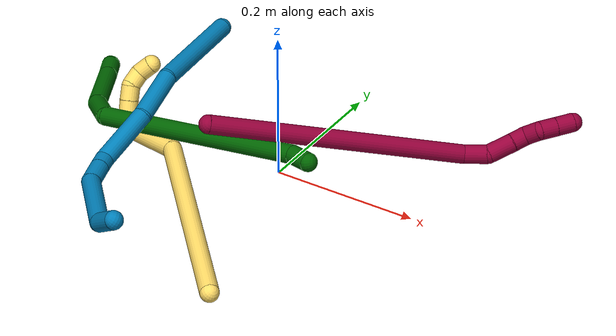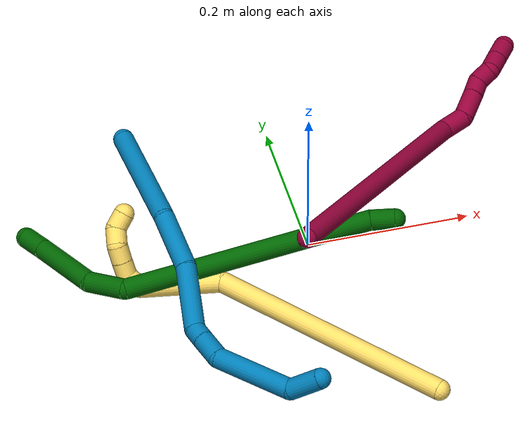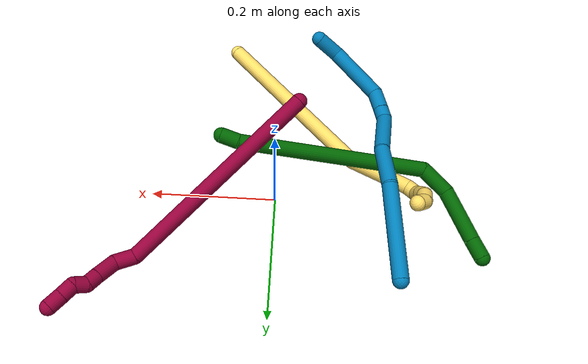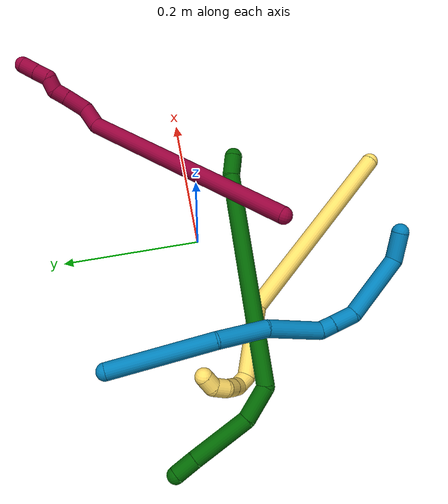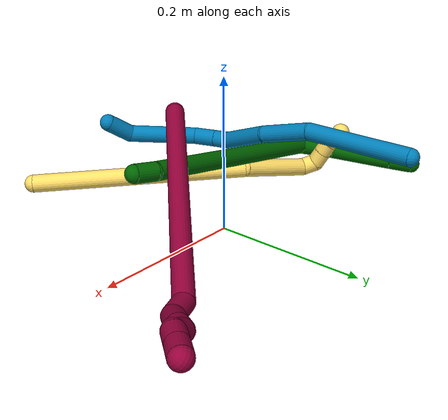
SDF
<sdf version="1.7">
 <world name="default">
  <model name="5">
   <static>0</static>
   <link name="5">
    <collision name="collision-cylinder-e_1_1_4">
     <pose>-0.072875 0.110516 -0.06959 -2.13276 -0.508963 0.880669</pose>
     <geometry><cylinder><radius>0.0125</radius><length>0.299115</length></cylinder></geometry>
     <surface>
      <friction><ode><mu>1.16</mu><mu2>1.16</mu2><slip1>0</slip1><slip2>0</slip2></ode></friction>
      <contact><ode><kp>1e+06</kp><kd>1</kd><max_vel>0</max_vel><min_depth>0.001</min_depth></ode></contact>
     </surface>
    </collision>
    <visual name="visual-cylinder-e_1_1_4">
     <pose>-0.072875 0.110516 -0.06959 -2.13276 -0.508963 0.880669</pose>
     <geometry><cylinder><radius>0.0125</radius><length>0.299115</length></cylinder></geometry>
     <material><ambient>1 0.858824 0.4 1</ambient></material>
    </visual>
    <collision name="collision-cylinder-e_2_4_5">
     <pose>-0.175124 0.236472 -0.176424 -2.7486 -0.629642 2.04424</pose>
     <geometry><cylinder><radius>0.0125</radius><length>0.099765</length></cylinder></geometry>
     <surface>
      <friction><ode><mu>1.16</mu><mu2>1.16</mu2><slip1>0</slip1><slip2>0</slip2></ode></friction>
      <contact><ode><kp>1e+06</kp><kd>1</kd><max_vel>0</max_vel><min_depth>0.001</min_depth></ode></contact>
     </surface>
    </collision>
    <visual name="visual-cylinder-e_2_4_5">
     <pose>-0.175124 0.236472 -0.176424 -2.7486 -0.629642 2.04424</pose>
     <geometry><cylinder><radius>0.0125</radius><length>0.099765</length></cylinder></geometry>
     <material><ambient>1 0.858824 0.4 1</ambient></material>
    </visual>
    <collision name="collision-cylinder-e_3_5_6">
     <pose>-0.210546 0.259815 -0.215406 -1.78732 -0.641841 0.784143</pose>
     <geometry><cylinder><radius>0.0125</radius><length>0.020205</length></cylinder></geometry>
     <surface>
      <friction><ode><mu>1.16</mu><mu2>1.16</mu2><slip1>0</slip1><slip2>0</slip2></ode></friction>
      <contact><ode><kp>1e+06</kp><kd>1</kd><max_vel>0</max_vel><min_depth>0.001</min_depth></ode></contact>
     </surface>
    </collision>
    <visual name="visual-cylinder-e_3_5_6">
     <pose>-0.210546 0.259815 -0.215406 -1.78732 -0.641841 0.784143</pose>
     <geometry><cylinder><radius>0.0125</radius><length>0.020205</length></cylinder></geometry>
     <material><ambient>1 0.858824 0.4 1</ambient></material>
    </visual>
    <collision name="collision-cylinder-e_4_6_7">
     <pose>-0.222895 0.273983 -0.212053 -0.888345 -0.662757 0.324593</pose>
     <geometry><cylinder><radius>0.0125</radius><length>0.020483</length></cylinder></geometry>
     <surface>
      <friction><ode><mu>1.16</mu><mu2>1.16</mu2><slip1>0</slip1><slip2>0</slip2></ode></friction>
      <contact><ode><kp>1e+06</kp><kd>1</kd><max_vel>0</max_vel><min_depth>0.001</min_depth></ode></contact>
     </surface>
    </collision>
    <visual name="visual-cylinder-e_4_6_7">
     <pose>-0.222895 0.273983 -0.212053 -0.888345 -0.662757 0.324593</pose>
     <geometry><cylinder><radius>0.0125</radius><length>0.020483</length></cylinder></geometry>
     <material><ambient>1 0.858824 0.4 1</ambient></material>
    </visual>
    <collision name="collision-cylinder-e_5_7_8">
     <pose>-0.23494 0.286634 -0.201828 -0.893731 -0.611385 0.300178</pose>
     <geometry><cylinder><radius>0.0125</radius><length>0.020011</length></cylinder></geometry>
     <surface>
      <friction><ode><mu>1.16</mu><mu2>1.16</mu2><slip1>0</slip1><slip2>0</slip2></ode></friction>
      <contact><ode><kp>1e+06</kp><kd>1</kd><max_vel>0</max_vel><min_depth>0.001</min_depth></ode></contact>
     </surface>
    </collision>
    <visual name="visual-cylinder-e_5_7_8">
     <pose>-0.23494 0.286634 -0.201828 -0.893731 -0.611385 0.300178</pose>
     <geometry><cylinder><radius>0.0125</radius><length>0.020011</length></cylinder></geometry>
     <material><ambient>1 0.858824 0.4 1</ambient></material>
    </visual>
    <collision name="collision-cylinder-e_6_8_9">
     <pose>-0.242005 0.302256 -0.192558 -1.1497 -0.129878 0.084208</pose>
     <geometry><cylinder><radius>0.0125</radius><length>0.020415</length></cylinder></geometry>
     <surface>
      <friction><ode><mu>1.16</mu><mu2>1.16</mu2><slip1>0</slip1><slip2>0</slip2></ode></friction>
      <contact><ode><kp>1e+06</kp><kd>1</kd><max_vel>0</max_vel><min_depth>0.001</min_depth></ode></contact>
     </surface>
    </collision>
    <visual name="visual-cylinder-e_6_8_9">
     <pose>-0.242005 0.302256 -0.192558 -1.1497 -0.129878 0.084208</pose>
     <geometry><cylinder><radius>0.0125</radius><length>0.020415</length></cylinder></geometry>
     <material><ambient>1 0.858824 0.4 1</ambient></material>
    </visual>
    <collision name="collision-cylinder-e_7_9_2">
     <pose>-0.241466 0.317262 -0.180463 -0.627205 0.187067 -0.060826</pose>
     <geometry><cylinder><radius>0.0125</radius><length>0.020007</length></cylinder></geometry>
     <surface>
      <friction><ode><mu>1.16</mu><mu2>1.16</mu2><slip1>0</slip1><slip2>0</slip2></ode></friction>
      <contact><ode><kp>1e+06</kp><kd>1</kd><max_vel>0</max_vel><min_depth>0.001</min_depth></ode></contact>
     </surface>
    </collision>
    <visual name="visual-cylinder-e_7_9_2">
     <pose>-0.241466 0.317262 -0.180463 -0.627205 0.187067 -0.060826</pose>
     <geometry><cylinder><radius>0.0125</radius><length>0.020007</length></cylinder></geometry>
     <material><ambient>1 0.858824 0.4 1</ambient></material>
    </visual>
    <collision name="collision-sphere-2">
     <pose>-0.239606 0.323031 -0.172505 0 -0 0</pose>
     <geometry><sphere><radius>0.0125</radius></sphere></geometry>
     <surface>
      <friction><ode><mu>1.16</mu><mu2>1.16</mu2><slip1>0</slip1><slip2>0</slip2></ode></friction>
      <contact><ode><kp>1e+06</kp><kd>1</kd><max_vel>0</max_vel><min_depth>0.001</min_depth></ode></contact>
     </surface>
    </collision>
    <visual name="visual-sphere-2">
     <pose>-0.239606 0.323031 -0.172505 0 -0 0</pose>
     <geometry><sphere><radius>0.0125</radius></sphere></geometry>
     <material><ambient>1 0.858824 0.4 1</ambient></material>
    </visual>
    <collision name="collision-sphere-9">
     <pose>-0.243327 0.311494 -0.188421 0 -0 0</pose>
     <geometry><sphere><radius>0.0125</radius></sphere></geometry>
     <surface>
      <friction><ode><mu>1.16</mu><mu2>1.16</mu2><slip1>0</slip1><slip2>0</slip2></ode></friction>
      <contact><ode><kp>1e+06</kp><kd>1</kd><max_vel>0</max_vel><min_depth>0.001</min_depth></ode></contact>
     </surface>
    </collision>
    <visual name="visual-sphere-9">
     <pose>-0.243327 0.311494 -0.188421 0 -0 0</pose>
     <geometry><sphere><radius>0.0125</radius></sphere></geometry>
     <material><ambient>1 0.858824 0.4 1</ambient></material>
    </visual>
    <collision name="collision-sphere-4">
     <pose>-0.14575 0.221032 -0.139181 0 -0 0</pose>
     <geometry><sphere><radius>0.0125</radius></sphere></geometry>
     <surface>
      <friction><ode><mu>1.16</mu><mu2>1.16</mu2><slip1>0</slip1><slip2>0</slip2></ode></friction>
      <contact><ode><kp>1e+06</kp><kd>1</kd><max_vel>0</max_vel><min_depth>0.001</min_depth></ode></contact>
     </surface>
    </collision>
    <visual name="visual-sphere-4">
     <pose>-0.14575 0.221032 -0.139181 0 -0 0</pose>
     <geometry><sphere><radius>0.0125</radius></sphere></geometry>
     <material><ambient>1 0.858824 0.4 1</ambient></material>
    </visual>
    <collision name="collision-sphere-1">
     <geometry><sphere><radius>0.0125</radius></sphere></geometry>
     <surface>
      <friction><ode><mu>1.16</mu><mu2>1.16</mu2><slip1>0</slip1><slip2>0</slip2></ode></friction>
      <contact><ode><kp>1e+06</kp><kd>1</kd><max_vel>0</max_vel><min_depth>0.001</min_depth></ode></contact>
     </surface>
    </collision>
    <visual name="visual-sphere-1">
     <geometry><sphere><radius>0.0125</radius></sphere></geometry>
     <material><ambient>1 0.858824 0.4 1</ambient></material>
    </visual>
    <collision name="collision-sphere-8">
     <pose>-0.240683 0.293019 -0.196695 0 -0 0</pose>
     <geometry><sphere><radius>0.0125</radius></sphere></geometry>
     <surface>
      <friction><ode><mu>1.16</mu><mu2>1.16</mu2><slip1>0</slip1><slip2>0</slip2></ode></friction>
      <contact><ode><kp>1e+06</kp><kd>1</kd><max_vel>0</max_vel><min_depth>0.001</min_depth></ode></contact>
     </surface>
    </collision>
    <visual name="visual-sphere-8">
     <pose>-0.240683 0.293019 -0.196695 0 -0 0</pose>
     <geometry><sphere><radius>0.0125</radius></sphere></geometry>
     <material><ambient>1 0.858824 0.4 1</ambient></material>
    </visual>
    <collision name="collision-sphere-5">
     <pose>-0.204498 0.251912 -0.213668 0 -0 0</pose>
     <geometry><sphere><radius>0.0125</radius></sphere></geometry>
     <surface>
      <friction><ode><mu>1.16</mu><mu2>1.16</mu2><slip1>0</slip1><slip2>0</slip2></ode></friction>
      <contact><ode><kp>1e+06</kp><kd>1</kd><max_vel>0</max_vel><min_depth>0.001</min_depth></ode></contact>
     </surface>
    </collision>
    <visual name="visual-sphere-5">
     <pose>-0.204498 0.251912 -0.213668 0 -0 0</pose>
     <geometry><sphere><radius>0.0125</radius></sphere></geometry>
     <material><ambient>1 0.858824 0.4 1</ambient></material>
    </visual>
    <collision name="collision-sphere-6">
     <pose>-0.216594 0.267718 -0.217145 0 -0 0</pose>
     <geometry><sphere><radius>0.0125</radius></sphere></geometry>
     <surface>
      <friction><ode><mu>1.16</mu><mu2>1.16</mu2><slip1>0</slip1><slip2>0</slip2></ode></friction>
      <contact><ode><kp>1e+06</kp><kd>1</kd><max_vel>0</max_vel><min_depth>0.001</min_depth></ode></contact>
     </surface>
    </collision>
    <visual name="visual-sphere-6">
     <pose>-0.216594 0.267718 -0.217145 0 -0 0</pose>
     <geometry><sphere><radius>0.0125</radius></sphere></geometry>
     <material><ambient>1 0.858824 0.4 1</ambient></material>
    </visual>
    <collision name="collision-sphere-7">
     <pose>-0.229196 0.280248 -0.206961 0 -0 0</pose>
     <geometry><sphere><radius>0.0125</radius></sphere></geometry>
     <surface>
      <friction><ode><mu>1.16</mu><mu2>1.16</mu2><slip1>0</slip1><slip2>0</slip2></ode></friction>
      <contact><ode><kp>1e+06</kp><kd>1</kd><max_vel>0</max_vel><min_depth>0.001</min_depth></ode></contact>
     </surface>
    </collision>
    <visual name="visual-sphere-7">
     <pose>-0.229196 0.280248 -0.206961 0 -0 0</pose>
     <geometry><sphere><radius>0.0125</radius></sphere></geometry>
     <material><ambient>1 0.858824 0.4 1</ambient></material>
    </visual>
    <inertial>
     <pose>-0.125123 0.171528 -0.117385 0 -0 0</pose>
     <mass>0.5</mass>
     <inertia>
      <ixx>0.002775</ixx>
      <ixy>0</ixy>
      <ixz>0</ixz>
      <iyy>0.001609</iyy>
      <iyz>0</iyz>
      <izz>-0.000556</izz>
     </inertia>
    </inertial>
   </link>
   <pose>0.082071 -0.282548 0.011487 0.227578 0.636922 0.154999</pose>
  </model>
  <model name="6">
   <static>0</static>
   <link name="6">
    <collision name="collision-cylinder-e_1_1_4">
     <pose>-0.005746 0.004418 0.012987 -0.327894 -0.396657 0.066469</pose>
     <geometry><cylinder><radius>0.0125</radius><length>0.029744</length></cylinder></geometry>
     <surface>
      <friction><ode><mu>1.16</mu><mu2>1.16</mu2><slip1>0</slip1><slip2>0</slip2></ode></friction>
      <contact><ode><kp>1e+06</kp><kd>1</kd><max_vel>0</max_vel><min_depth>0.001</min_depth></ode></contact>
     </surface>
    </collision>
    <visual name="visual-cylinder-e_1_1_4">
     <pose>-0.005746 0.004418 0.012987 -0.327894 -0.396657 0.066469</pose>
     <geometry><cylinder><radius>0.0125</radius><length>0.029744</length></cylinder></geometry>
     <material><ambient>0 0.392157 0.003922 1</ambient></material>
    </visual>
    <collision name="collision-cylinder-e_2_4_5">
     <pose>-0.037456 0.034291 0.17204 -0.172539 -0.17336 0.01503</pose>
     <geometry><cylinder><radius>0.0125</radius><length>0.30105</length></cylinder></geometry>
     <surface>
      <friction><ode><mu>1.16</mu><mu2>1.16</mu2><slip1>0</slip1><slip2>0</slip2></ode></friction>
      <contact><ode><kp>1e+06</kp><kd>1</kd><max_vel>0</max_vel><min_depth>0.001</min_depth></ode></contact>
     </surface>
    </collision>
    <visual name="visual-cylinder-e_2_4_5">
     <pose>-0.037456 0.034291 0.17204 -0.172539 -0.17336 0.01503</pose>
     <geometry><cylinder><radius>0.0125</radius><length>0.30105</length></cylinder></geometry>
     <material><ambient>0 0.392157 0.003922 1</ambient></material>
    </visual>
    <collision name="collision-cylinder-e_3_5_6">
     <pose>-0.082142 0.066421 0.333489 -0.40945 -0.840401 0.185017</pose>
     <geometry><cylinder><radius>0.0125</radius><length>0.050267</length></cylinder></geometry>
     <surface>
      <friction><ode><mu>1.16</mu><mu2>1.16</mu2><slip1>0</slip1><slip2>0</slip2></ode></friction>
      <contact><ode><kp>1e+06</kp><kd>1</kd><max_vel>0</max_vel><min_depth>0.001</min_depth></ode></contact>
     </surface>
    </collision>
    <visual name="visual-cylinder-e_3_5_6">
     <pose>-0.082142 0.066421 0.333489 -0.40945 -0.840401 0.185017</pose>
     <geometry><cylinder><radius>0.0125</radius><length>0.050267</length></cylinder></geometry>
     <material><ambient>0 0.392157 0.003922 1</ambient></material>
    </visual>
    <collision name="collision-cylinder-e_4_6_7">
     <pose>-0.140148 0.087773 0.360685 -0.89304 -1.12362 0.585431</pose>
     <geometry><cylinder><radius>0.0125</radius><length>0.087135</length></cylinder></geometry>
     <surface>
      <friction><ode><mu>1.16</mu><mu2>1.16</mu2><slip1>0</slip1><slip2>0</slip2></ode></friction>
      <contact><ode><kp>1e+06</kp><kd>1</kd><max_vel>0</max_vel><min_depth>0.001</min_depth></ode></contact>
     </surface>
    </collision>
    <visual name="visual-cylinder-e_4_6_7">
     <pose>-0.140148 0.087773 0.360685 -0.89304 -1.12362 0.585431</pose>
     <geometry><cylinder><radius>0.0125</radius><length>0.087135</length></cylinder></geometry>
     <material><ambient>0 0.392157 0.003922 1</ambient></material>
    </visual>
    <collision name="collision-cylinder-e_5_7_2">
     <pose>-0.193598 0.107924 0.37721 -0.860177 -1.09924 0.547889</pose>
     <geometry><cylinder><radius>0.0125</radius><length>0.031804</length></cylinder></geometry>
     <surface>
      <friction><ode><mu>1.16</mu><mu2>1.16</mu2><slip1>0</slip1><slip2>0</slip2></ode></friction>
      <contact><ode><kp>1e+06</kp><kd>1</kd><max_vel>0</max_vel><min_depth>0.001</min_depth></ode></contact>
     </surface>
    </collision>
    <visual name="visual-cylinder-e_5_7_2">
     <pose>-0.193598 0.107924 0.37721 -0.860177 -1.09924 0.547889</pose>
     <geometry><cylinder><radius>0.0125</radius><length>0.031804</length></cylinder></geometry>
     <material><ambient>0 0.392157 0.003922 1</ambient></material>
    </visual>
    <collision name="collision-sphere-2">
     <pose>-0.207765 0.113399 0.381922 0 -0 0</pose>
     <geometry><sphere><radius>0.0125</radius></sphere></geometry>
     <surface>
      <friction><ode><mu>1.16</mu><mu2>1.16</mu2><slip1>0</slip1><slip2>0</slip2></ode></friction>
      <contact><ode><kp>1e+06</kp><kd>1</kd><max_vel>0</max_vel><min_depth>0.001</min_depth></ode></contact>
     </surface>
    </collision>
    <visual name="visual-sphere-2">
     <pose>-0.207765 0.113399 0.381922 0 -0 0</pose>
     <geometry><sphere><radius>0.0125</radius></sphere></geometry>
     <material><ambient>0 0.392157 0.003922 1</ambient></material>
    </visual>
    <collision name="collision-sphere-7">
     <pose>-0.179432 0.102448 0.372498 0 -0 0</pose>
     <geometry><sphere><radius>0.0125</radius></sphere></geometry>
     <surface>
      <friction><ode><mu>1.16</mu><mu2>1.16</mu2><slip1>0</slip1><slip2>0</slip2></ode></friction>
      <contact><ode><kp>1e+06</kp><kd>1</kd><max_vel>0</max_vel><min_depth>0.001</min_depth></ode></contact>
     </surface>
    </collision>
    <visual name="visual-sphere-7">
     <pose>-0.179432 0.102448 0.372498 0 -0 0</pose>
     <geometry><sphere><radius>0.0125</radius></sphere></geometry>
     <material><ambient>0 0.392157 0.003922 1</ambient></material>
    </visual>
    <collision name="collision-sphere-6">
     <pose>-0.100864 0.073097 0.348871 0 -0 0</pose>
     <geometry><sphere><radius>0.0125</radius></sphere></geometry>
     <surface>
      <friction><ode><mu>1.16</mu><mu2>1.16</mu2><slip1>0</slip1><slip2>0</slip2></ode></friction>
      <contact><ode><kp>1e+06</kp><kd>1</kd><max_vel>0</max_vel><min_depth>0.001</min_depth></ode></contact>
     </surface>
    </collision>
    <visual name="visual-sphere-6">
     <pose>-0.100864 0.073097 0.348871 0 -0 0</pose>
     <geometry><sphere><radius>0.0125</radius></sphere></geometry>
     <material><ambient>0 0.392157 0.003922 1</ambient></material>
    </visual>
    <collision name="collision-sphere-5">
     <pose>-0.06342 0.059746 0.318107 0 -0 0</pose>
     <geometry><sphere><radius>0.0125</radius></sphere></geometry>
     <surface>
      <friction><ode><mu>1.16</mu><mu2>1.16</mu2><slip1>0</slip1><slip2>0</slip2></ode></friction>
      <contact><ode><kp>1e+06</kp><kd>1</kd><max_vel>0</max_vel><min_depth>0.001</min_depth></ode></contact>
     </surface>
    </collision>
    <visual name="visual-sphere-5">
     <pose>-0.06342 0.059746 0.318107 0 -0 0</pose>
     <geometry><sphere><radius>0.0125</radius></sphere></geometry>
     <material><ambient>0 0.392157 0.003922 1</ambient></material>
    </visual>
    <collision name="collision-sphere-1">
     <geometry><sphere><radius>0.0125</radius></sphere></geometry>
     <surface>
      <friction><ode><mu>1.16</mu><mu2>1.16</mu2><slip1>0</slip1><slip2>0</slip2></ode></friction>
      <contact><ode><kp>1e+06</kp><kd>1</kd><max_vel>0</max_vel><min_depth>0.001</min_depth></ode></contact>
     </surface>
    </collision>
    <visual name="visual-sphere-1">
     <geometry><sphere><radius>0.0125</radius></sphere></geometry>
     <material><ambient>0 0.392157 0.003922 1</ambient></material>
    </visual>
    <collision name="collision-sphere-4">
     <pose>-0.011491 0.008835 0.025973 0 -0 0</pose>
     <geometry><sphere><radius>0.0125</radius></sphere></geometry>
     <surface>
      <friction><ode><mu>1.16</mu><mu2>1.16</mu2><slip1>0</slip1><slip2>0</slip2></ode></friction>
      <contact><ode><kp>1e+06</kp><kd>1</kd><max_vel>0</max_vel><min_depth>0.001</min_depth></ode></contact>
     </surface>
    </collision>
    <visual name="visual-sphere-4">
     <pose>-0.011491 0.008835 0.025973 0 -0 0</pose>
     <geometry><sphere><radius>0.0125</radius></sphere></geometry>
     <material><ambient>0 0.392157 0.003922 1</ambient></material>
    </visual>
    <inertial>
     <pose>-0.06789 0.049748 0.224735 0 -0 0</pose>
     <mass>0.5</mass>
     <inertia>
      <ixx>0.002319</ixx>
      <ixy>0</ixy>
      <ixz>0</ixz>
      <iyy>0.002384</iyy>
      <iyz>0</iyz>
      <izz>7.9e-05</izz>
     </inertia>
    </inertial>
   </link>
   <pose>0.088272 -0.068032 0.084882 1.8457 -0.387177 -1.46986</pose>
  </model>
  <model name="8">
   <static>0</static>
   <link name="8">
    <collision name="collision-cylinder-e_1_1_4">
     <pose>0.053297 0.164729 -0.000233 -1.57221 0.312913 -0.313349</pose>
     <geometry><cylinder><radius>0.0125</radius><length>0.346274</length></cylinder></geometry>
     <surface>
      <friction><ode><mu>1.16</mu><mu2>1.16</mu2><slip1>0</slip1><slip2>0</slip2></ode></friction>
      <contact><ode><kp>1e+06</kp><kd>1</kd><max_vel>0</max_vel><min_depth>0.001</min_depth></ode></contact>
     </surface>
    </collision>
    <visual name="visual-cylinder-e_1_1_4">
     <pose>0.053297 0.164729 -0.000233 -1.57221 0.312913 -0.313349</pose>
     <geometry><cylinder><radius>0.0125</radius><length>0.346274</length></cylinder></geometry>
     <material><ambient>0.584314 0 0.227451 1</ambient></material>
    </visual>
    <collision name="collision-cylinder-e_2_4_5">
     <pose>0.110672 0.342892 0.007321 -1.04547 0.256852 -0.148543</pose>
     <geometry><cylinder><radius>0.0125</radius><length>0.032107</length></cylinder></geometry>
     <surface>
      <friction><ode><mu>1.16</mu><mu2>1.16</mu2><slip1>0</slip1><slip2>0</slip2></ode></friction>
      <contact><ode><kp>1e+06</kp><kd>1</kd><max_vel>0</max_vel><min_depth>0.001</min_depth></ode></contact>
     </surface>
    </collision>
    <visual name="visual-cylinder-e_2_4_5">
     <pose>0.110672 0.342892 0.007321 -1.04547 0.256852 -0.148543</pose>
     <geometry><cylinder><radius>0.0125</radius><length>0.032107</length></cylinder></geometry>
     <material><ambient>0.584314 0 0.227451 1</ambient></material>
    </visual>
    <collision name="collision-cylinder-e_3_5_6">
     <pose>0.111118 0.372634 0.019667 -1.2982 -0.211319 0.160598</pose>
     <geometry><cylinder><radius>0.0125</radius><length>0.034639</length></cylinder></geometry>
     <surface>
      <friction><ode><mu>1.16</mu><mu2>1.16</mu2><slip1>0</slip1><slip2>0</slip2></ode></friction>
      <contact><ode><kp>1e+06</kp><kd>1</kd><max_vel>0</max_vel><min_depth>0.001</min_depth></ode></contact>
     </surface>
    </collision>
    <visual name="visual-cylinder-e_3_5_6">
     <pose>0.111118 0.372634 0.019667 -1.2982 -0.211319 0.160598</pose>
     <geometry><cylinder><radius>0.0125</radius><length>0.034639</length></cylinder></geometry>
     <material><ambient>0.584314 0 0.227451 1</ambient></material>
    </visual>
    <collision name="collision-cylinder-e_4_6_7">
     <pose>0.105052 0.398585 0.026519 -1.33735 -0.240692 0.190516</pose>
     <geometry><cylinder><radius>0.0125</radius><length>0.020411</length></cylinder></geometry>
     <surface>
      <friction><ode><mu>1.16</mu><mu2>1.16</mu2><slip1>0</slip1><slip2>0</slip2></ode></friction>
      <contact><ode><kp>1e+06</kp><kd>1</kd><max_vel>0</max_vel><min_depth>0.001</min_depth></ode></contact>
     </surface>
    </collision>
    <visual name="visual-cylinder-e_4_6_7">
     <pose>0.105052 0.398585 0.026519 -1.33735 -0.240692 0.190516</pose>
     <geometry><cylinder><radius>0.0125</radius><length>0.020411</length></cylinder></geometry>
     <material><ambient>0.584314 0 0.227451 1</ambient></material>
    </visual>
    <collision name="collision-cylinder-e_5_7_8">
     <pose>0.10209 0.415014 0.036424 -0.728108 -0.051918 0.019787</pose>
     <geometry><cylinder><radius>0.0125</radius><length>0.020424</length></cylinder></geometry>
     <surface>
      <friction><ode><mu>1.16</mu><mu2>1.16</mu2><slip1>0</slip1><slip2>0</slip2></ode></friction>
      <contact><ode><kp>1e+06</kp><kd>1</kd><max_vel>0</max_vel><min_depth>0.001</min_depth></ode></contact>
     </surface>
    </collision>
    <visual name="visual-cylinder-e_5_7_8">
     <pose>0.10209 0.415014 0.036424 -0.728108 -0.051918 0.019787</pose>
     <geometry><cylinder><radius>0.0125</radius><length>0.020424</length></cylinder></geometry>
     <material><ambient>0.584314 0 0.227451 1</ambient></material>
    </visual>
    <collision name="collision-cylinder-e_6_8_9">
     <pose>0.101395 0.432817 0.045282 -1.4582 -0.014833 0.01325</pose>
     <geometry><cylinder><radius>0.0125</radius><length>0.022176</length></cylinder></geometry>
     <surface>
      <friction><ode><mu>1.16</mu><mu2>1.16</mu2><slip1>0</slip1><slip2>0</slip2></ode></friction>
      <contact><ode><kp>1e+06</kp><kd>1</kd><max_vel>0</max_vel><min_depth>0.001</min_depth></ode></contact>
     </surface>
    </collision>
    <visual name="visual-cylinder-e_6_8_9">
     <pose>0.101395 0.432817 0.045282 -1.4582 -0.014833 0.01325</pose>
     <geometry><cylinder><radius>0.0125</radius><length>0.022176</length></cylinder></geometry>
     <material><ambient>0.584314 0 0.227451 1</ambient></material>
    </visual>
    <collision name="collision-cylinder-e_7_9_2">
     <pose>0.100935 0.45569 0.048253 -1.4263 -0.024657 0.021329</pose>
     <geometry><cylinder><radius>0.0125</radius><length>0.02397</length></cylinder></geometry>
     <surface>
      <friction><ode><mu>1.16</mu><mu2>1.16</mu2><slip1>0</slip1><slip2>0</slip2></ode></friction>
      <contact><ode><kp>1e+06</kp><kd>1</kd><max_vel>0</max_vel><min_depth>0.001</min_depth></ode></contact>
     </surface>
    </collision>
    <visual name="visual-cylinder-e_7_9_2">
     <pose>0.100935 0.45569 0.048253 -1.4263 -0.024657 0.021329</pose>
     <geometry><cylinder><radius>0.0125</radius><length>0.02397</length></cylinder></geometry>
     <material><ambient>0.584314 0 0.227451 1</ambient></material>
    </visual>
    <collision name="collision-sphere-2">
     <pose>0.10064 0.467546 0.049978 0 -0 0</pose>
     <geometry><sphere><radius>0.0125</radius></sphere></geometry>
     <surface>
      <friction><ode><mu>1.16</mu><mu2>1.16</mu2><slip1>0</slip1><slip2>0</slip2></ode></friction>
      <contact><ode><kp>1e+06</kp><kd>1</kd><max_vel>0</max_vel><min_depth>0.001</min_depth></ode></contact>
     </surface>
    </collision>
    <visual name="visual-sphere-2">
     <pose>0.10064 0.467546 0.049978 0 -0 0</pose>
     <geometry><sphere><radius>0.0125</radius></sphere></geometry>
     <material><ambient>0.584314 0 0.227451 1</ambient></material>
    </visual>
    <collision name="collision-sphere-9">
     <pose>0.101231 0.443833 0.046528 0 -0 0</pose>
     <geometry><sphere><radius>0.0125</radius></sphere></geometry>
     <surface>
      <friction><ode><mu>1.16</mu><mu2>1.16</mu2><slip1>0</slip1><slip2>0</slip2></ode></friction>
      <contact><ode><kp>1e+06</kp><kd>1</kd><max_vel>0</max_vel><min_depth>0.001</min_depth></ode></contact>
     </surface>
    </collision>
    <visual name="visual-sphere-9">
     <pose>0.101231 0.443833 0.046528 0 -0 0</pose>
     <geometry><sphere><radius>0.0125</radius></sphere></geometry>
     <material><ambient>0.584314 0 0.227451 1</ambient></material>
    </visual>
    <collision name="collision-sphere-4">
     <pose>0.106594 0.329459 -0.000465 0 -0 0</pose>
     <geometry><sphere><radius>0.0125</radius></sphere></geometry>
     <surface>
      <friction><ode><mu>1.16</mu><mu2>1.16</mu2><slip1>0</slip1><slip2>0</slip2></ode></friction>
      <contact><ode><kp>1e+06</kp><kd>1</kd><max_vel>0</max_vel><min_depth>0.001</min_depth></ode></contact>
     </surface>
    </collision>
    <visual name="visual-sphere-4">
     <pose>0.106594 0.329459 -0.000465 0 -0 0</pose>
     <geometry><sphere><radius>0.0125</radius></sphere></geometry>
     <material><ambient>0.584314 0 0.227451 1</ambient></material>
    </visual>
    <collision name="collision-sphere-1">
     <geometry><sphere><radius>0.0125</radius></sphere></geometry>
     <surface>
      <friction><ode><mu>1.16</mu><mu2>1.16</mu2><slip1>0</slip1><slip2>0</slip2></ode></friction>
      <contact><ode><kp>1e+06</kp><kd>1</kd><max_vel>0</max_vel><min_depth>0.001</min_depth></ode></contact>
     </surface>
    </collision>
    <visual name="visual-sphere-1">
     <geometry><sphere><radius>0.0125</radius></sphere></geometry>
     <material><ambient>0.584314 0 0.227451 1</ambient></material>
    </visual>
    <collision name="collision-sphere-8">
     <pose>0.10156 0.4218 0.044036 0 -0 0</pose>
     <geometry><sphere><radius>0.0125</radius></sphere></geometry>
     <surface>
      <friction><ode><mu>1.16</mu><mu2>1.16</mu2><slip1>0</slip1><slip2>0</slip2></ode></friction>
      <contact><ode><kp>1e+06</kp><kd>1</kd><max_vel>0</max_vel><min_depth>0.001</min_depth></ode></contact>
     </surface>
    </collision>
    <visual name="visual-sphere-8">
     <pose>0.10156 0.4218 0.044036 0 -0 0</pose>
     <geometry><sphere><radius>0.0125</radius></sphere></geometry>
     <material><ambient>0.584314 0 0.227451 1</ambient></material>
    </visual>
    <collision name="collision-sphere-5">
     <pose>0.11475 0.356325 0.015108 0 -0 0</pose>
     <geometry><sphere><radius>0.0125</radius></sphere></geometry>
     <surface>
      <friction><ode><mu>1.16</mu><mu2>1.16</mu2><slip1>0</slip1><slip2>0</slip2></ode></friction>
      <contact><ode><kp>1e+06</kp><kd>1</kd><max_vel>0</max_vel><min_depth>0.001</min_depth></ode></contact>
     </surface>
    </collision>
    <visual name="visual-sphere-5">
     <pose>0.11475 0.356325 0.015108 0 -0 0</pose>
     <geometry><sphere><radius>0.0125</radius></sphere></geometry>
     <material><ambient>0.584314 0 0.227451 1</ambient></material>
    </visual>
    <collision name="collision-sphere-6">
     <pose>0.107485 0.388942 0.024226 0 -0 0</pose>
     <geometry><sphere><radius>0.0125</radius></sphere></geometry>
     <surface>
      <friction><ode><mu>1.16</mu><mu2>1.16</mu2><slip1>0</slip1><slip2>0</slip2></ode></friction>
      <contact><ode><kp>1e+06</kp><kd>1</kd><max_vel>0</max_vel><min_depth>0.001</min_depth></ode></contact>
     </surface>
    </collision>
    <visual name="visual-sphere-6">
     <pose>0.107485 0.388942 0.024226 0 -0 0</pose>
     <geometry><sphere><radius>0.0125</radius></sphere></geometry>
     <material><ambient>0.584314 0 0.227451 1</ambient></material>
    </visual>
    <collision name="collision-sphere-7">
     <pose>0.10262 0.408227 0.028812 0 -0 0</pose>
     <geometry><sphere><radius>0.0125</radius></sphere></geometry>
     <surface>
      <friction><ode><mu>1.16</mu><mu2>1.16</mu2><slip1>0</slip1><slip2>0</slip2></ode></friction>
      <contact><ode><kp>1e+06</kp><kd>1</kd><max_vel>0</max_vel><min_depth>0.001</min_depth></ode></contact>
     </surface>
    </collision>
    <visual name="visual-sphere-7">
     <pose>0.10262 0.408227 0.028812 0 -0 0</pose>
     <geometry><sphere><radius>0.0125</radius></sphere></geometry>
     <material><ambient>0.584314 0 0.227451 1</ambient></material>
    </visual>
    <inertial>
     <pose>0.06951 0.236182 0.008563 0 -0 0</pose>
     <mass>0.5</mass>
     <inertia>
      <ixx>0.002149</ixx>
      <ixy>0</ixy>
      <ixz>0</ixz>
      <iyy>-0.000651</iyy>
      <iyz>0</iyz>
      <izz>-0.004384</izz>
     </inertia>
    </inertial>
   </link>
   <pose>-0.031383 -0.112827 0.124699 -0.048232 0.875447 -0.621681</pose>
  </model>
  <model name="9">
   <static>0</static>
   <link name="9">
    <collision name="collision-cylinder-e_1_1_4">
     <pose>-0.020637 -0.001313 1.9e-05 1.55607 -1.50726 -1.49256</pose>
     <geometry><cylinder><radius>0.0125</radius><length>0.041358</length></cylinder></geometry>
     <surface>
      <friction><ode><mu>1.16</mu><mu2>1.16</mu2><slip1>0</slip1><slip2>0</slip2></ode></friction>
      <contact><ode><kp>1e+06</kp><kd>1</kd><max_vel>0</max_vel><min_depth>0.001</min_depth></ode></contact>
     </surface>
    </collision>
    <visual name="visual-cylinder-e_1_1_4">
     <pose>-0.020637 -0.001313 1.9e-05 1.55607 -1.50726 -1.49256</pose>
     <geometry><cylinder><radius>0.0125</radius><length>0.041358</length></cylinder></geometry>
     <material><ambient>0 0.490196 0.709804 1</ambient></material>
    </visual>
    <collision name="collision-cylinder-e_2_4_5">
     <pose>-0.081958 0.026339 0.001417 -1.52326 -0.951563 0.913373</pose>
     <geometry><cylinder><radius>0.0125</radius><length>0.099919</length></cylinder></geometry>
     <surface>
      <friction><ode><mu>1.16</mu><mu2>1.16</mu2><slip1>0</slip1><slip2>0</slip2></ode></friction>
      <contact><ode><kp>1e+06</kp><kd>1</kd><max_vel>0</max_vel><min_depth>0.001</min_depth></ode></contact>
     </surface>
    </collision>
    <visual name="visual-cylinder-e_2_4_5">
     <pose>-0.081958 0.026339 0.001417 -1.52326 -0.951563 0.913373</pose>
     <geometry><cylinder><radius>0.0125</radius><length>0.099919</length></cylinder></geometry>
     <material><ambient>0 0.490196 0.709804 1</ambient></material>
    </visual>
    <collision name="collision-cylinder-e_3_5_6">
     <pose>-0.132081 0.068106 -0.001744 -1.91146 -0.607345 0.834958</pose>
     <geometry><cylinder><radius>0.0125</radius><length>0.033084</length></cylinder></geometry>
     <surface>
      <friction><ode><mu>1.16</mu><mu2>1.16</mu2><slip1>0</slip1><slip2>0</slip2></ode></friction>
      <contact><ode><kp>1e+06</kp><kd>1</kd><max_vel>0</max_vel><min_depth>0.001</min_depth></ode></contact>
     </surface>
    </collision>
    <visual name="visual-cylinder-e_3_5_6">
     <pose>-0.132081 0.068106 -0.001744 -1.91146 -0.607345 0.834958</pose>
     <geometry><cylinder><radius>0.0125</radius><length>0.033084</length></cylinder></geometry>
     <material><ambient>0 0.490196 0.709804 1</ambient></material>
    </visual>
    <collision name="collision-cylinder-e_4_6_7">
     <pose>-0.14723 0.088669 -0.009264 -1.93767 -0.601739 0.848444</pose>
     <geometry><cylinder><radius>0.0125</radius><length>0.020167</length></cylinder></geometry>
     <surface>
      <friction><ode><mu>1.16</mu><mu2>1.16</mu2><slip1>0</slip1><slip2>0</slip2></ode></friction>
      <contact><ode><kp>1e+06</kp><kd>1</kd><max_vel>0</max_vel><min_depth>0.001</min_depth></ode></contact>
     </surface>
    </collision>
    <visual name="visual-cylinder-e_4_6_7">
     <pose>-0.14723 0.088669 -0.009264 -1.93767 -0.601739 0.848444</pose>
     <geometry><cylinder><radius>0.0125</radius><length>0.020167</length></cylinder></geometry>
     <material><ambient>0 0.490196 0.709804 1</ambient></material>
    </visual>
    <collision name="collision-cylinder-e_5_7_8">
     <pose>-0.156166 0.134995 -0.02433 -1.87444 -0.079707 0.108454</pose>
     <geometry><cylinder><radius>0.0125</radius><length>0.081089</length></cylinder></geometry>
     <surface>
      <friction><ode><mu>1.16</mu><mu2>1.16</mu2><slip1>0</slip1><slip2>0</slip2></ode></friction>
      <contact><ode><kp>1e+06</kp><kd>1</kd><max_vel>0</max_vel><min_depth>0.001</min_depth></ode></contact>
     </surface>
    </collision>
    <visual name="visual-cylinder-e_5_7_8">
     <pose>-0.156166 0.134995 -0.02433 -1.87444 -0.079707 0.108454</pose>
     <geometry><cylinder><radius>0.0125</radius><length>0.081089</length></cylinder></geometry>
     <material><ambient>0 0.490196 0.709804 1</ambient></material>
    </visual>
    <collision name="collision-cylinder-e_6_8_9">
     <pose>-0.171339 0.207015 -0.045359 -1.83207 -0.332157 0.429914</pose>
     <geometry><cylinder><radius>0.0125</radius><length>0.073262</length></cylinder></geometry>
     <surface>
      <friction><ode><mu>1.16</mu><mu2>1.16</mu2><slip1>0</slip1><slip2>0</slip2></ode></friction>
      <contact><ode><kp>1e+06</kp><kd>1</kd><max_vel>0</max_vel><min_depth>0.001</min_depth></ode></contact>
     </surface>
    </collision>
    <visual name="visual-cylinder-e_6_8_9">
     <pose>-0.171339 0.207015 -0.045359 -1.83207 -0.332157 0.429914</pose>
     <geometry><cylinder><radius>0.0125</radius><length>0.073262</length></cylinder></geometry>
     <material><ambient>0 0.490196 0.709804 1</ambient></material>
    </visual>
    <collision name="collision-cylinder-e_7_9_2">
     <pose>-0.217876 0.298619 -0.087939 -2.0952 -0.475531 0.795512</pose>
     <geometry><cylinder><radius>0.0125</radius><length>0.151121</length></cylinder></geometry>
     <surface>
      <friction><ode><mu>1.16</mu><mu2>1.16</mu2><slip1>0</slip1><slip2>0</slip2></ode></friction>
      <contact><ode><kp>1e+06</kp><kd>1</kd><max_vel>0</max_vel><min_depth>0.001</min_depth></ode></contact>
     </surface>
    </collision>
    <visual name="visual-cylinder-e_7_9_2">
     <pose>-0.217876 0.298619 -0.087939 -2.0952 -0.475531 0.795512</pose>
     <geometry><cylinder><radius>0.0125</radius><length>0.151121</length></cylinder></geometry>
     <material><ambient>0 0.490196 0.709804 1</ambient></material>
    </visual>
    <collision name="collision-sphere-2">
     <pose>-0.252469 0.356769 -0.121574 0 -0 0</pose>
     <geometry><sphere><radius>0.0125</radius></sphere></geometry>
     <surface>
      <friction><ode><mu>1.16</mu><mu2>1.16</mu2><slip1>0</slip1><slip2>0</slip2></ode></friction>
      <contact><ode><kp>1e+06</kp><kd>1</kd><max_vel>0</max_vel><min_depth>0.001</min_depth></ode></contact>
     </surface>
    </collision>
    <visual name="visual-sphere-2">
     <pose>-0.252469 0.356769 -0.121574 0 -0 0</pose>
     <geometry><sphere><radius>0.0125</radius></sphere></geometry>
     <material><ambient>0 0.490196 0.709804 1</ambient></material>
    </visual>
    <collision name="collision-sphere-9">
     <pose>-0.183284 0.240469 -0.054304 0 -0 0</pose>
     <geometry><sphere><radius>0.0125</radius></sphere></geometry>
     <surface>
      <friction><ode><mu>1.16</mu><mu2>1.16</mu2><slip1>0</slip1><slip2>0</slip2></ode></friction>
      <contact><ode><kp>1e+06</kp><kd>1</kd><max_vel>0</max_vel><min_depth>0.001</min_depth></ode></contact>
     </surface>
    </collision>
    <visual name="visual-sphere-9">
     <pose>-0.183284 0.240469 -0.054304 0 -0 0</pose>
     <geometry><sphere><radius>0.0125</radius></sphere></geometry>
     <material><ambient>0 0.490196 0.709804 1</ambient></material>
    </visual>
    <collision name="collision-sphere-4">
     <pose>-0.041274 -0.002626 3.9e-05 0 -0 0</pose>
     <geometry><sphere><radius>0.0125</radius></sphere></geometry>
     <surface>
      <friction><ode><mu>1.16</mu><mu2>1.16</mu2><slip1>0</slip1><slip2>0</slip2></ode></friction>
      <contact><ode><kp>1e+06</kp><kd>1</kd><max_vel>0</max_vel><min_depth>0.001</min_depth></ode></contact>
     </surface>
    </collision>
    <visual name="visual-sphere-4">
     <pose>-0.041274 -0.002626 3.9e-05 0 -0 0</pose>
     <geometry><sphere><radius>0.0125</radius></sphere></geometry>
     <material><ambient>0 0.490196 0.709804 1</ambient></material>
    </visual>
    <collision name="collision-sphere-1">
     <geometry><sphere><radius>0.0125</radius></sphere></geometry>
     <surface>
      <friction><ode><mu>1.16</mu><mu2>1.16</mu2><slip1>0</slip1><slip2>0</slip2></ode></friction>
      <contact><ode><kp>1e+06</kp><kd>1</kd><max_vel>0</max_vel><min_depth>0.001</min_depth></ode></contact>
     </surface>
    </collision>
    <visual name="visual-sphere-1">
     <geometry><sphere><radius>0.0125</radius></sphere></geometry>
     <material><ambient>0 0.490196 0.709804 1</ambient></material>
    </visual>
    <collision name="collision-sphere-8">
     <pose>-0.159395 0.173561 -0.036414 0 -0 0</pose>
     <geometry><sphere><radius>0.0125</radius></sphere></geometry>
     <surface>
      <friction><ode><mu>1.16</mu><mu2>1.16</mu2><slip1>0</slip1><slip2>0</slip2></ode></friction>
      <contact><ode><kp>1e+06</kp><kd>1</kd><max_vel>0</max_vel><min_depth>0.001</min_depth></ode></contact>
     </surface>
    </collision>
    <visual name="visual-sphere-8">
     <pose>-0.159395 0.173561 -0.036414 0 -0 0</pose>
     <geometry><sphere><radius>0.0125</radius></sphere></geometry>
     <material><ambient>0 0.490196 0.709804 1</ambient></material>
    </visual>
    <collision name="collision-sphere-5">
     <pose>-0.122641 0.055303 0.002795 0 -0 0</pose>
     <geometry><sphere><radius>0.0125</radius></sphere></geometry>
     <surface>
      <friction><ode><mu>1.16</mu><mu2>1.16</mu2><slip1>0</slip1><slip2>0</slip2></ode></friction>
      <contact><ode><kp>1e+06</kp><kd>1</kd><max_vel>0</max_vel><min_depth>0.001</min_depth></ode></contact>
     </surface>
    </collision>
    <visual name="visual-sphere-5">
     <pose>-0.122641 0.055303 0.002795 0 -0 0</pose>
     <geometry><sphere><radius>0.0125</radius></sphere></geometry>
     <material><ambient>0 0.490196 0.709804 1</ambient></material>
    </visual>
    <collision name="collision-sphere-6">
     <pose>-0.141522 0.080909 -0.006282 0 -0 0</pose>
     <geometry><sphere><radius>0.0125</radius></sphere></geometry>
     <surface>
      <friction><ode><mu>1.16</mu><mu2>1.16</mu2><slip1>0</slip1><slip2>0</slip2></ode></friction>
      <contact><ode><kp>1e+06</kp><kd>1</kd><max_vel>0</max_vel><min_depth>0.001</min_depth></ode></contact>
     </surface>
    </collision>
    <visual name="visual-sphere-6">
     <pose>-0.141522 0.080909 -0.006282 0 -0 0</pose>
     <geometry><sphere><radius>0.0125</radius></sphere></geometry>
     <material><ambient>0 0.490196 0.709804 1</ambient></material>
    </visual>
    <collision name="collision-sphere-7">
     <pose>-0.152938 0.096428 -0.012246 0 -0 0</pose>
     <geometry><sphere><radius>0.0125</radius></sphere></geometry>
     <surface>
      <friction><ode><mu>1.16</mu><mu2>1.16</mu2><slip1>0</slip1><slip2>0</slip2></ode></friction>
      <contact><ode><kp>1e+06</kp><kd>1</kd><max_vel>0</max_vel><min_depth>0.001</min_depth></ode></contact>
     </surface>
    </collision>
    <visual name="visual-sphere-7">
     <pose>-0.152938 0.096428 -0.012246 0 -0 0</pose>
     <geometry><sphere><radius>0.0125</radius></sphere></geometry>
     <material><ambient>0 0.490196 0.709804 1</ambient></material>
    </visual>
    <inertial>
     <pose>-0.149047 0.155718 -0.037375 0 -0 0</pose>
     <mass>0.5</mass>
     <inertia>
      <ixx>0.000523</ixx>
      <ixy>0</ixy>
      <ixz>0</ixz>
      <iyy>0.000306</iyy>
      <iyz>0</iyz>
      <izz>-0.000136</izz>
     </inertia>
    </inertial>
   </link>
   <pose>-0.060438 -0.280517 0.065271 0.789541 -0.538282 -0.440618</pose>
  </model>
 </world>
</sdf>
